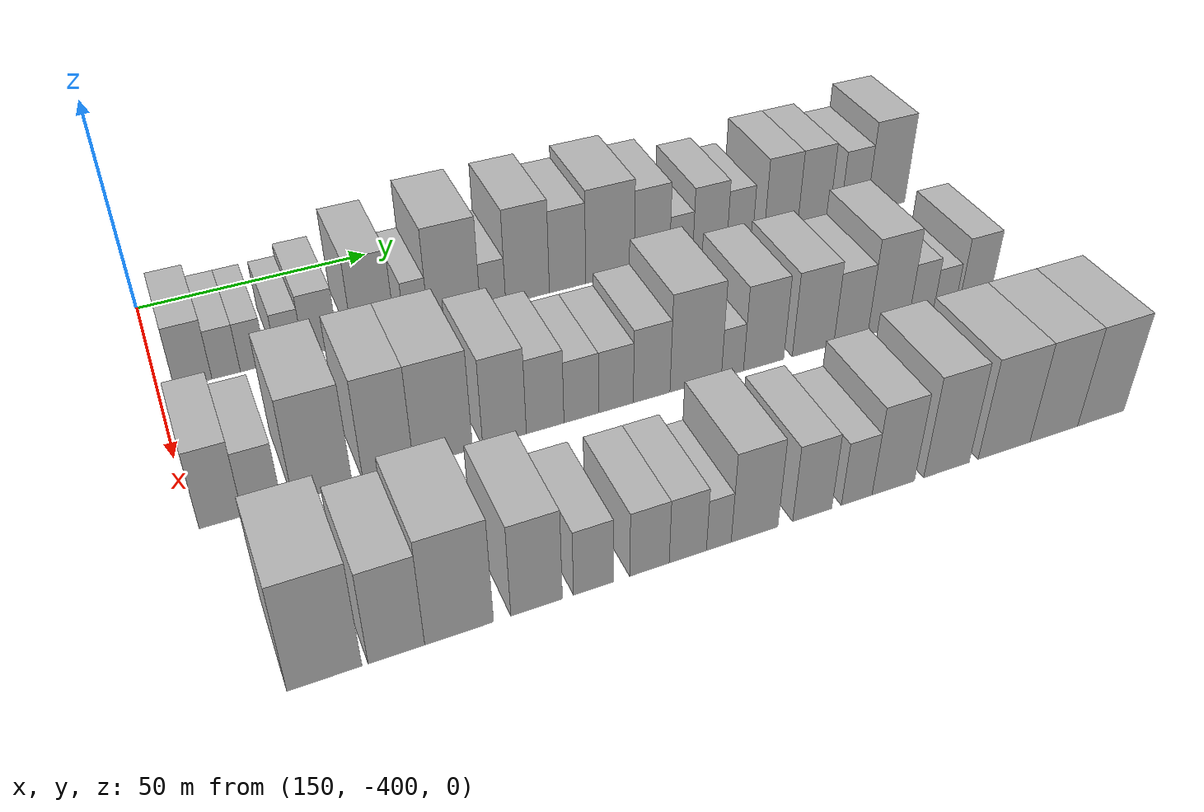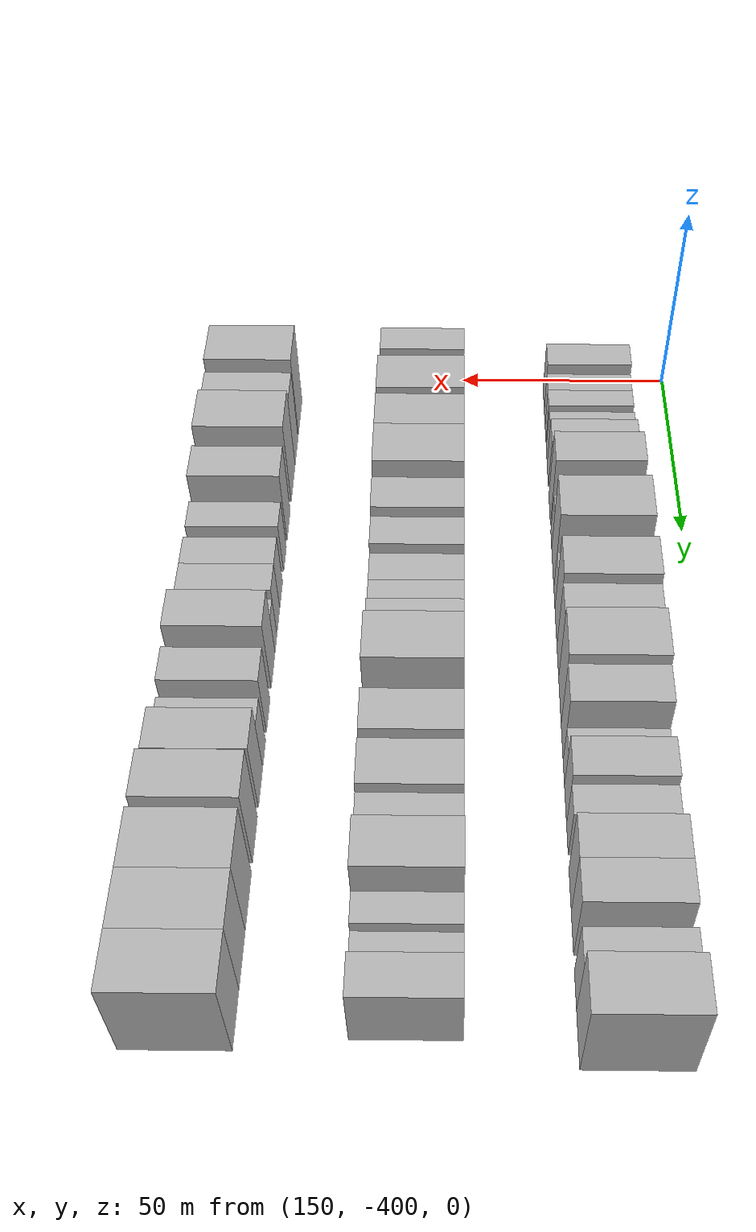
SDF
<sdf version="1.6">
 <world name="default">
  <model name="building_437">
   <static>1</static>
   <pose>170.0000 -393.1007 0 0.000000 0.000000 0.000000</pose>
   <link name="link">
    <pose>0 0 7.50 0 0 0</pose>
    <collision name="collision"><geometry><box><size>20.0000 7.3663 15.0000</size></box></geometry></collision>
    <visual name="visual">
     <cast_shadows>0</cast_shadows>
     <geometry><box><size>20.0000 7.3663 15.0000</size></box></geometry>
     <material>
      <script>
       <uri>model://HANNAS_wall/materials/scripts</uri>
       <uri>model://HANNAS_wall/materials/textures</uri>
       <name>vrc/HANNAS_wall</name>
      </script>
     </material>
    </visual>
   </link>
  </model>
  <model name="building_438">
   <static>1</static>
   <pose>170.0000 -386.5834 0 0.000000 0.000000 0.000000</pose>
   <link name="link">
    <pose>0 0 6.00 0 0 0</pose>
    <collision name="collision"><geometry><box><size>20.0000 5.6684 12.0000</size></box></geometry></collision>
    <visual name="visual">
     <cast_shadows>0</cast_shadows>
     <geometry><box><size>20.0000 5.6684 12.0000</size></box></geometry>
     <material>
      <script>
       <uri>model://HANNAS_wall/materials/scripts</uri>
       <uri>model://HANNAS_wall/materials/textures</uri>
       <name>vrc/HANNAS_wall</name>
      </script>
     </material>
    </visual>
   </link>
  </model>
  <model name="building_439">
   <static>1</static>
   <pose>170.0000 -381.0757 0 0.000000 0.000000 0.000000</pose>
   <link name="link">
    <pose>0 0 6.00 0 0 0</pose>
    <collision name="collision"><geometry><box><size>20.0000 5.3468 12.0000</size></box></geometry></collision>
    <visual name="visual">
     <cast_shadows>0</cast_shadows>
     <geometry><box><size>20.0000 5.3468 12.0000</size></box></geometry>
     <material>
      <script>
       <uri>model://HANNAS_wall/materials/scripts</uri>
       <uri>model://HANNAS_wall/materials/textures</uri>
       <name>vrc/HANNAS_wall</name>
      </script>
     </material>
    </visual>
   </link>
  </model>
  <model name="building_440">
   <static>1</static>
   <pose>170.0000 -373.6140 0 0.000000 0.000000 0.000000</pose>
   <link name="link">
    <pose>0 0 6.00 0 0 0</pose>
    <collision name="collision"><geometry><box><size>20.0000 5.5766 12.0000</size></box></geometry></collision>
    <visual name="visual">
     <cast_shadows>0</cast_shadows>
     <geometry><box><size>20.0000 5.5766 12.0000</size></box></geometry>
     <material>
      <script>
       <uri>model://HANNAS_wall/materials/scripts</uri>
       <uri>model://HANNAS_wall/materials/textures</uri>
       <name>vrc/HANNAS_wall</name>
      </script>
     </material>
    </visual>
   </link>
  </model>
  <model name="building_441">
   <static>1</static>
   <pose>170.0000 -367.2083 0 0.000000 0.000000 0.000000</pose>
   <link name="link">
    <pose>0 0 7.50 0 0 0</pose>
    <collision name="collision"><geometry><box><size>20.0000 7.2350 15.0000</size></box></geometry></collision>
    <visual name="visual">
     <cast_shadows>0</cast_shadows>
     <geometry><box><size>20.0000 7.2350 15.0000</size></box></geometry>
     <material>
      <script>
       <uri>model://HANNAS_wall/materials/scripts</uri>
       <uri>model://HANNAS_wall/materials/textures</uri>
       <name>vrc/HANNAS_wall</name>
      </script>
     </material>
    </visual>
   </link>
  </model>
  <model name="building_442">
   <static>1</static>
   <pose>170.0000 -356.0742 0 0.000000 0.000000 0.000000</pose>
   <link name="link">
    <pose>0 0 10.50 0 0 0</pose>
    <collision name="collision"><geometry><box><size>20.0000 9.0331 21.0000</size></box></geometry></collision>
    <visual name="visual">
     <cast_shadows>0</cast_shadows>
     <geometry><box><size>20.0000 9.0331 21.0000</size></box></geometry>
     <material>
      <script>
       <uri>model://HANNAS_wall/materials/scripts</uri>
       <uri>model://HANNAS_wall/materials/textures</uri>
       <name>vrc/HANNAS_wall</name>
      </script>
     </material>
    </visual>
   </link>
  </model>
  <model name="building_443">
   <static>1</static>
   <pose>170.0000 -346.9433 0 0.000000 0.000000 0.000000</pose>
   <link name="link">
    <pose>0 0 6.00 0 0 0</pose>
    <collision name="collision"><geometry><box><size>20.0000 5.2286 12.0000</size></box></geometry></collision>
    <visual name="visual">
     <cast_shadows>0</cast_shadows>
     <geometry><box><size>20.0000 5.2286 12.0000</size></box></geometry>
     <material>
      <script>
       <uri>model://HANNAS_wall/materials/scripts</uri>
       <uri>model://HANNAS_wall/materials/textures</uri>
       <name>vrc/HANNAS_wall</name>
      </script>
     </material>
    </visual>
   </link>
  </model>
  <model name="building_444">
   <static>1</static>
   <pose>170.0000 -338.5435 0 0.000000 0.000000 0.000000</pose>
   <link name="link">
    <pose>0 0 12.00 0 0 0</pose>
    <collision name="collision"><geometry><box><size>20.0000 11.5711 24.0000</size></box></geometry></collision>
    <visual name="visual">
     <cast_shadows>0</cast_shadows>
     <geometry><box><size>20.0000 11.5711 24.0000</size></box></geometry>
     <material>
      <script>
       <uri>model://HANNAS_wall/materials/scripts</uri>
       <uri>model://HANNAS_wall/materials/textures</uri>
       <name>vrc/HANNAS_wall</name>
      </script>
     </material>
    </visual>
   </link>
  </model>
  <model name="building_445">
   <static>1</static>
   <pose>170.0000 -329.8842 0 0.000000 0.000000 0.000000</pose>
   <link name="link">
    <pose>0 0 6.00 0 0 0</pose>
    <collision name="collision"><geometry><box><size>20.0000 5.7475 12.0000</size></box></geometry></collision>
    <visual name="visual">
     <cast_shadows>0</cast_shadows>
     <geometry><box><size>20.0000 5.7475 12.0000</size></box></geometry>
     <material>
      <script>
       <uri>model://HANNAS_wall/materials/scripts</uri>
       <uri>model://HANNAS_wall/materials/textures</uri>
       <name>vrc/HANNAS_wall</name>
      </script>
     </material>
    </visual>
   </link>
  </model>
  <model name="building_446">
   <static>1</static>
   <pose>170.0000 -321.9696 0 0.000000 0.000000 0.000000</pose>
   <link name="link">
    <pose>0 0 12.00 0 0 0</pose>
    <collision name="collision"><geometry><box><size>20.0000 10.0817 24.0000</size></box></geometry></collision>
    <visual name="visual">
     <cast_shadows>0</cast_shadows>
     <geometry><box><size>20.0000 10.0817 24.0000</size></box></geometry>
     <material>
      <script>
       <uri>model://HANNAS_wall/materials/scripts</uri>
       <uri>model://HANNAS_wall/materials/textures</uri>
       <name>vrc/HANNAS_wall</name>
      </script>
     </material>
    </visual>
   </link>
  </model>
  <model name="building_447">
   <static>1</static>
   <pose>170.0000 -312.6576 0 0.000000 0.000000 0.000000</pose>
   <link name="link">
    <pose>0 0 10.50 0 0 0</pose>
    <collision name="collision"><geometry><box><size>20.0000 8.5422 21.0000</size></box></geometry></collision>
    <visual name="visual">
     <cast_shadows>0</cast_shadows>
     <geometry><box><size>20.0000 8.5422 21.0000</size></box></geometry>
     <material>
      <script>
       <uri>model://HANNAS_wall/materials/scripts</uri>
       <uri>model://HANNAS_wall/materials/textures</uri>
       <name>vrc/HANNAS_wall</name>
      </script>
     </material>
    </visual>
   </link>
  </model>
  <model name="building_448">
   <static>1</static>
   <pose>170.0000 -302.5746 0 0.000000 0.000000 0.000000</pose>
   <link name="link">
    <pose>0 0 12.00 0 0 0</pose>
    <collision name="collision"><geometry><box><size>20.0000 11.6238 24.0000</size></box></geometry></collision>
    <visual name="visual">
     <cast_shadows>0</cast_shadows>
     <geometry><box><size>20.0000 11.6238 24.0000</size></box></geometry>
     <material>
      <script>
       <uri>model://HANNAS_wall/materials/scripts</uri>
       <uri>model://HANNAS_wall/materials/textures</uri>
       <name>vrc/HANNAS_wall</name>
      </script>
     </material>
    </visual>
   </link>
  </model>
  <model name="building_449">
   <static>1</static>
   <pose>170.0000 -292.4098 0 0.000000 0.000000 0.000000</pose>
   <link name="link">
    <pose>0 0 10.50 0 0 0</pose>
    <collision name="collision"><geometry><box><size>20.0000 8.7058 21.0000</size></box></geometry></collision>
    <visual name="visual">
     <cast_shadows>0</cast_shadows>
     <geometry><box><size>20.0000 8.7058 21.0000</size></box></geometry>
     <material>
      <script>
       <uri>model://HANNAS_wall/materials/scripts</uri>
       <uri>model://HANNAS_wall/materials/textures</uri>
       <name>vrc/HANNAS_wall</name>
      </script>
     </material>
    </visual>
   </link>
  </model>
  <model name="building_450">
   <static>1</static>
   <pose>170.0000 -285.1520 0 0.000000 0.000000 0.000000</pose>
   <link name="link">
    <pose>0 0 6.00 0 0 0</pose>
    <collision name="collision"><geometry><box><size>20.0000 5.8097 12.0000</size></box></geometry></collision>
    <visual name="visual">
     <cast_shadows>0</cast_shadows>
     <geometry><box><size>20.0000 5.8097 12.0000</size></box></geometry>
     <material>
      <script>
       <uri>model://HANNAS_wall/materials/scripts</uri>
       <uri>model://HANNAS_wall/materials/textures</uri>
       <name>vrc/HANNAS_wall</name>
      </script>
     </material>
    </visual>
   </link>
  </model>
  <model name="building_451">
   <static>1</static>
   <pose>170.0000 -277.9276 0 0.000000 0.000000 0.000000</pose>
   <link name="link">
    <pose>0 0 9.00 0 0 0</pose>
    <collision name="collision"><geometry><box><size>20.0000 8.6393 18.0000</size></box></geometry></collision>
    <visual name="visual">
     <cast_shadows>0</cast_shadows>
     <geometry><box><size>20.0000 8.6393 18.0000</size></box></geometry>
     <material>
      <script>
       <uri>model://HANNAS_wall/materials/scripts</uri>
       <uri>model://HANNAS_wall/materials/textures</uri>
       <name>vrc/HANNAS_wall</name>
      </script>
     </material>
    </visual>
   </link>
  </model>
  <model name="building_452">
   <static>1</static>
   <pose>170.0000 -270.3039 0 0.000000 0.000000 0.000000</pose>
   <link name="link">
    <pose>0 0 7.50 0 0 0</pose>
    <collision name="collision"><geometry><box><size>20.0000 6.6082 15.0000</size></box></geometry></collision>
    <visual name="visual">
     <cast_shadows>0</cast_shadows>
     <geometry><box><size>20.0000 6.6082 15.0000</size></box></geometry>
     <material>
      <script>
       <uri>model://HANNAS_wall/materials/scripts</uri>
       <uri>model://HANNAS_wall/materials/textures</uri>
       <name>vrc/HANNAS_wall</name>
      </script>
     </material>
    </visual>
   </link>
  </model>
  <model name="building_453">
   <static>1</static>
   <pose>170.0000 -259.5985 0 0.000000 0.000000 0.000000</pose>
   <link name="link">
    <pose>0 0 10.50 0 0 0</pose>
    <collision name="collision"><geometry><box><size>20.0000 8.8025 21.0000</size></box></geometry></collision>
    <visual name="visual">
     <cast_shadows>0</cast_shadows>
     <geometry><box><size>20.0000 8.8025 21.0000</size></box></geometry>
     <material>
      <script>
       <uri>model://HANNAS_wall/materials/scripts</uri>
       <uri>model://HANNAS_wall/materials/textures</uri>
       <name>vrc/HANNAS_wall</name>
      </script>
     </material>
    </visual>
   </link>
  </model>
  <model name="building_454">
   <static>1</static>
   <pose>170.0000 -250.9530 0 0.000000 0.000000 0.000000</pose>
   <link name="link">
    <pose>0 0 10.50 0 0 0</pose>
    <collision name="collision"><geometry><box><size>20.0000 8.4886 21.0000</size></box></geometry></collision>
    <visual name="visual">
     <cast_shadows>0</cast_shadows>
     <geometry><box><size>20.0000 8.4886 21.0000</size></box></geometry>
     <material>
      <script>
       <uri>model://HANNAS_wall/materials/scripts</uri>
       <uri>model://HANNAS_wall/materials/textures</uri>
       <name>vrc/HANNAS_wall</name>
      </script>
     </material>
    </visual>
   </link>
  </model>
  <model name="building_455">
   <static>1</static>
   <pose>170.0000 -240.0830 0 0.000000 0.000000 0.000000</pose>
   <link name="link">
    <pose>0 0 9.00 0 0 0</pose>
    <collision name="collision"><geometry><box><size>20.0000 7.2514 18.0000</size></box></geometry></collision>
    <visual name="visual">
     <cast_shadows>0</cast_shadows>
     <geometry><box><size>20.0000 7.2514 18.0000</size></box></geometry>
     <material>
      <script>
       <uri>model://HANNAS_wall/materials/scripts</uri>
       <uri>model://HANNAS_wall/materials/textures</uri>
       <name>vrc/HANNAS_wall</name>
      </script>
     </material>
    </visual>
   </link>
  </model>
  <model name="building_456">
   <static>1</static>
   <pose>170.0000 -231.1326 0 0.000000 0.000000 0.000000</pose>
   <link name="link">
    <pose>0 0 12.00 0 0 0</pose>
    <collision name="collision"><geometry><box><size>20.0000 10.6492 24.0000</size></box></geometry></collision>
    <visual name="visual">
     <cast_shadows>0</cast_shadows>
     <geometry><box><size>20.0000 10.6492 24.0000</size></box></geometry>
     <material>
      <script>
       <uri>model://HANNAS_wall/materials/scripts</uri>
       <uri>model://HANNAS_wall/materials/textures</uri>
       <name>vrc/HANNAS_wall</name>
      </script>
     </material>
    </visual>
   </link>
  </model>
  <model name="building_567">
   <static>1</static>
   <pose>210.0000 -394.9767 0 0.000000 0.000000 0.000000</pose>
   <link name="link">
    <pose>0 0 9.00 0 0 0</pose>
    <collision name="collision"><geometry><box><size>20.0000 7.6325 18.0000</size></box></geometry></collision>
    <visual name="visual">
     <cast_shadows>0</cast_shadows>
     <geometry><box><size>20.0000 7.6325 18.0000</size></box></geometry>
     <material>
      <script>
       <uri>model://HANNAS_wall/materials/scripts</uri>
       <uri>model://HANNAS_wall/materials/textures</uri>
       <name>vrc/HANNAS_wall</name>
      </script>
     </material>
    </visual>
   </link>
  </model>
  <model name="building_568">
   <static>1</static>
   <pose>210.0000 -387.6490 0 0.000000 0.000000 0.000000</pose>
   <link name="link">
    <pose>0 0 7.50 0 0 0</pose>
    <collision name="collision"><geometry><box><size>20.0000 7.0229 15.0000</size></box></geometry></collision>
    <visual name="visual">
     <cast_shadows>0</cast_shadows>
     <geometry><box><size>20.0000 7.0229 15.0000</size></box></geometry>
     <material>
      <script>
       <uri>model://HANNAS_wall/materials/scripts</uri>
       <uri>model://HANNAS_wall/materials/textures</uri>
       <name>vrc/HANNAS_wall</name>
      </script>
     </material>
    </visual>
   </link>
  </model>
  <model name="building_569">
   <static>1</static>
   <pose>210.0000 -376.6925 0 0.000000 0.000000 0.000000</pose>
   <link name="link">
    <pose>0 0 12.00 0 0 0</pose>
    <collision name="collision"><geometry><box><size>20.0000 10.8902 24.0000</size></box></geometry></collision>
    <visual name="visual">
     <cast_shadows>0</cast_shadows>
     <geometry><box><size>20.0000 10.8902 24.0000</size></box></geometry>
     <material>
      <script>
       <uri>model://HANNAS_wall/materials/scripts</uri>
       <uri>model://HANNAS_wall/materials/textures</uri>
       <name>vrc/HANNAS_wall</name>
      </script>
     </material>
    </visual>
   </link>
  </model>
  <model name="building_570">
   <static>1</static>
   <pose>210.0000 -364.4446 0 0.000000 0.000000 0.000000</pose>
   <link name="link">
    <pose>0 0 12.00 0 0 0</pose>
    <collision name="collision"><geometry><box><size>20.0000 9.6057 24.0000</size></box></geometry></collision>
    <visual name="visual">
     <cast_shadows>0</cast_shadows>
     <geometry><box><size>20.0000 9.6057 24.0000</size></box></geometry>
     <material>
      <script>
       <uri>model://HANNAS_wall/materials/scripts</uri>
       <uri>model://HANNAS_wall/materials/textures</uri>
       <name>vrc/HANNAS_wall</name>
      </script>
     </material>
    </visual>
   </link>
  </model>
  <model name="building_571">
   <static>1</static>
   <pose>210.0000 -353.8946 0 0.000000 0.000000 0.000000</pose>
   <link name="link">
    <pose>0 0 12.00 0 0 0</pose>
    <collision name="collision"><geometry><box><size>20.0000 11.4943 24.0000</size></box></geometry></collision>
    <visual name="visual">
     <cast_shadows>0</cast_shadows>
     <geometry><box><size>20.0000 11.4943 24.0000</size></box></geometry>
     <material>
      <script>
       <uri>model://HANNAS_wall/materials/scripts</uri>
       <uri>model://HANNAS_wall/materials/textures</uri>
       <name>vrc/HANNAS_wall</name>
      </script>
     </material>
    </visual>
   </link>
  </model>
  <model name="building_572">
   <static>1</static>
   <pose>210.0000 -341.7567 0 0.000000 0.000000 0.000000</pose>
   <link name="link">
    <pose>0 0 10.50 0 0 0</pose>
    <collision name="collision"><geometry><box><size>20.0000 8.7815 21.0000</size></box></geometry></collision>
    <visual name="visual">
     <cast_shadows>0</cast_shadows>
     <geometry><box><size>20.0000 8.7815 21.0000</size></box></geometry>
     <material>
      <script>
       <uri>model://HANNAS_wall/materials/scripts</uri>
       <uri>model://HANNAS_wall/materials/textures</uri>
       <name>vrc/HANNAS_wall</name>
      </script>
     </material>
    </visual>
   </link>
  </model>
  <model name="building_573">
   <static>1</static>
   <pose>210.0000 -333.5121 0 0.000000 0.000000 0.000000</pose>
   <link name="link">
    <pose>0 0 9.00 0 0 0</pose>
    <collision name="collision"><geometry><box><size>20.0000 7.7076 18.0000</size></box></geometry></collision>
    <visual name="visual">
     <cast_shadows>0</cast_shadows>
     <geometry><box><size>20.0000 7.7076 18.0000</size></box></geometry>
     <material>
      <script>
       <uri>model://HANNAS_wall/materials/scripts</uri>
       <uri>model://HANNAS_wall/materials/textures</uri>
       <name>vrc/HANNAS_wall</name>
      </script>
     </material>
    </visual>
   </link>
  </model>
  <model name="building_574">
   <static>1</static>
   <pose>210.0000 -326.0404 0 0.000000 0.000000 0.000000</pose>
   <link name="link">
    <pose>0 0 7.50 0 0 0</pose>
    <collision name="collision"><geometry><box><size>20.0000 7.2357 15.0000</size></box></geometry></collision>
    <visual name="visual">
     <cast_shadows>0</cast_shadows>
     <geometry><box><size>20.0000 7.2357 15.0000</size></box></geometry>
     <material>
      <script>
       <uri>model://HANNAS_wall/materials/scripts</uri>
       <uri>model://HANNAS_wall/materials/textures</uri>
       <name>vrc/HANNAS_wall</name>
      </script>
     </material>
    </visual>
   </link>
  </model>
  <model name="building_575">
   <static>1</static>
   <pose>210.0000 -318.7363 0 0.000000 0.000000 0.000000</pose>
   <link name="link">
    <pose>0 0 7.50 0 0 0</pose>
    <collision name="collision"><geometry><box><size>20.0000 7.3725 15.0000</size></box></geometry></collision>
    <visual name="visual">
     <cast_shadows>0</cast_shadows>
     <geometry><box><size>20.0000 7.3725 15.0000</size></box></geometry>
     <material>
      <script>
       <uri>model://HANNAS_wall/materials/scripts</uri>
       <uri>model://HANNAS_wall/materials/textures</uri>
       <name>vrc/HANNAS_wall</name>
      </script>
     </material>
    </visual>
   </link>
  </model>
  <model name="building_576">
   <static>1</static>
   <pose>210.0000 -311.0718 0 0.000000 0.000000 0.000000</pose>
   <link name="link">
    <pose>0 0 9.00 0 0 0</pose>
    <collision name="collision"><geometry><box><size>20.0000 7.9565 18.0000</size></box></geometry></collision>
    <visual name="visual">
     <cast_shadows>0</cast_shadows>
     <geometry><box><size>20.0000 7.9565 18.0000</size></box></geometry>
     <material>
      <script>
       <uri>model://HANNAS_wall/materials/scripts</uri>
       <uri>model://HANNAS_wall/materials/textures</uri>
       <name>vrc/HANNAS_wall</name>
      </script>
     </material>
    </visual>
   </link>
  </model>
  <model name="building_577">
   <static>1</static>
   <pose>210.0000 -301.3837 0 0.000000 0.000000 0.000000</pose>
   <link name="link">
    <pose>0 0 12.00 0 0 0</pose>
    <collision name="collision"><geometry><box><size>20.0000 11.4197 24.0000</size></box></geometry></collision>
    <visual name="visual">
     <cast_shadows>0</cast_shadows>
     <geometry><box><size>20.0000 11.4197 24.0000</size></box></geometry>
     <material>
      <script>
       <uri>model://HANNAS_wall/materials/scripts</uri>
       <uri>model://HANNAS_wall/materials/textures</uri>
       <name>vrc/HANNAS_wall</name>
      </script>
     </material>
    </visual>
   </link>
  </model>
  <model name="building_578">
   <static>1</static>
   <pose>210.0000 -293.1694 0 0.000000 0.000000 0.000000</pose>
   <link name="link">
    <pose>0 0 6.00 0 0 0</pose>
    <collision name="collision"><geometry><box><size>20.0000 5.0089 12.0000</size></box></geometry></collision>
    <visual name="visual">
     <cast_shadows>0</cast_shadows>
     <geometry><box><size>20.0000 5.0089 12.0000</size></box></geometry>
     <material>
      <script>
       <uri>model://HANNAS_wall/materials/scripts</uri>
       <uri>model://HANNAS_wall/materials/textures</uri>
       <name>vrc/HANNAS_wall</name>
      </script>
     </material>
    </visual>
   </link>
  </model>
  <model name="building_579">
   <static>1</static>
   <pose>210.0000 -286.0375 0 0.000000 0.000000 0.000000</pose>
   <link name="link">
    <pose>0 0 10.50 0 0 0</pose>
    <collision name="collision"><geometry><box><size>20.0000 9.2550 21.0000</size></box></geometry></collision>
    <visual name="visual">
     <cast_shadows>0</cast_shadows>
     <geometry><box><size>20.0000 9.2550 21.0000</size></box></geometry>
     <material>
      <script>
       <uri>model://HANNAS_wall/materials/scripts</uri>
       <uri>model://HANNAS_wall/materials/textures</uri>
       <name>vrc/HANNAS_wall</name>
      </script>
     </material>
    </visual>
   </link>
  </model>
  <model name="building_580">
   <static>1</static>
   <pose>210.0000 -274.5081 0 0.000000 0.000000 0.000000</pose>
   <link name="link">
    <pose>0 0 10.50 0 0 0</pose>
    <collision name="collision"><geometry><box><size>20.0000 9.8038 21.0000</size></box></geometry></collision>
    <visual name="visual">
     <cast_shadows>0</cast_shadows>
     <geometry><box><size>20.0000 9.8038 21.0000</size></box></geometry>
     <material>
      <script>
       <uri>model://HANNAS_wall/materials/scripts</uri>
       <uri>model://HANNAS_wall/materials/textures</uri>
       <name>vrc/HANNAS_wall</name>
      </script>
     </material>
    </visual>
   </link>
  </model>
  <model name="building_581">
   <static>1</static>
   <pose>210.0000 -265.4993 0 0.000000 0.000000 0.000000</pose>
   <link name="link">
    <pose>0 0 9.00 0 0 0</pose>
    <collision name="collision"><geometry><box><size>20.0000 8.2138 18.0000</size></box></geometry></collision>
    <visual name="visual">
     <cast_shadows>0</cast_shadows>
     <geometry><box><size>20.0000 8.2138 18.0000</size></box></geometry>
     <material>
      <script>
       <uri>model://HANNAS_wall/materials/scripts</uri>
       <uri>model://HANNAS_wall/materials/textures</uri>
       <name>vrc/HANNAS_wall</name>
      </script>
     </material>
    </visual>
   </link>
  </model>
  <model name="building_582">
   <static>1</static>
   <pose>210.0000 -256.4042 0 0.000000 0.000000 0.000000</pose>
   <link name="link">
    <pose>0 0 12.00 0 0 0</pose>
    <collision name="collision"><geometry><box><size>20.0000 9.9763 24.0000</size></box></geometry></collision>
    <visual name="visual">
     <cast_shadows>0</cast_shadows>
     <geometry><box><size>20.0000 9.9763 24.0000</size></box></geometry>
     <material>
      <script>
       <uri>model://HANNAS_wall/materials/scripts</uri>
       <uri>model://HANNAS_wall/materials/textures</uri>
       <name>vrc/HANNAS_wall</name>
      </script>
     </material>
    </visual>
   </link>
  </model>
  <model name="building_583">
   <static>1</static>
   <pose>210.0000 -248.3607 0 0.000000 0.000000 0.000000</pose>
   <link name="link">
    <pose>0 0 7.50 0 0 0</pose>
    <collision name="collision"><geometry><box><size>20.0000 6.1108 15.0000</size></box></geometry></collision>
    <visual name="visual">
     <cast_shadows>0</cast_shadows>
     <geometry><box><size>20.0000 6.1108 15.0000</size></box></geometry>
     <material>
      <script>
       <uri>model://HANNAS_wall/materials/scripts</uri>
       <uri>model://HANNAS_wall/materials/textures</uri>
       <name>vrc/HANNAS_wall</name>
      </script>
     </material>
    </visual>
   </link>
  </model>
  <model name="building_584">
   <static>1</static>
   <pose>210.0000 -242.5183 0 0.000000 0.000000 0.000000</pose>
   <link name="link">
    <pose>0 0 6.00 0 0 0</pose>
    <collision name="collision"><geometry><box><size>20.0000 5.5739 12.0000</size></box></geometry></collision>
    <visual name="visual">
     <cast_shadows>0</cast_shadows>
     <geometry><box><size>20.0000 5.5739 12.0000</size></box></geometry>
     <material>
      <script>
       <uri>model://HANNAS_wall/materials/scripts</uri>
       <uri>model://HANNAS_wall/materials/textures</uri>
       <name>vrc/HANNAS_wall</name>
      </script>
     </material>
    </visual>
   </link>
  </model>
  <model name="building_585">
   <static>1</static>
   <pose>210.0000 -234.7299 0 0.000000 0.000000 0.000000</pose>
   <link name="link">
    <pose>0 0 9.00 0 0 0</pose>
    <collision name="collision"><geometry><box><size>20.0000 8.0029 18.0000</size></box></geometry></collision>
    <visual name="visual">
     <cast_shadows>0</cast_shadows>
     <geometry><box><size>20.0000 8.0029 18.0000</size></box></geometry>
     <material>
      <script>
       <uri>model://HANNAS_wall/materials/scripts</uri>
       <uri>model://HANNAS_wall/materials/textures</uri>
       <name>vrc/HANNAS_wall</name>
      </script>
     </material>
    </visual>
   </link>
  </model>
  <model name="building_710">
   <static>1</static>
   <pose>250.0000 -386.2293 0 0.000000 0.000000 0.000000</pose>
   <link name="link">
    <pose>0 0 12.00 0 0 0</pose>
    <collision name="collision"><geometry><box><size>20.0000 11.9785 24.0000</size></box></geometry></collision>
    <visual name="visual">
     <cast_shadows>0</cast_shadows>
     <geometry><box><size>20.0000 11.9785 24.0000</size></box></geometry>
     <material>
      <script>
       <uri>model://HANNAS_wall/materials/scripts</uri>
       <uri>model://HANNAS_wall/materials/textures</uri>
       <name>vrc/HANNAS_wall</name>
      </script>
     </material>
    </visual>
   </link>
  </model>
  <model name="building_711">
   <static>1</static>
   <pose>250.0000 -374.5732 0 0.000000 0.000000 0.000000</pose>
   <link name="link">
    <pose>0 0 10.50 0 0 0</pose>
    <collision name="collision"><geometry><box><size>20.0000 9.3337 21.0000</size></box></geometry></collision>
    <visual name="visual">
     <cast_shadows>0</cast_shadows>
     <geometry><box><size>20.0000 9.3337 21.0000</size></box></geometry>
     <material>
      <script>
       <uri>model://HANNAS_wall/materials/scripts</uri>
       <uri>model://HANNAS_wall/materials/textures</uri>
       <name>vrc/HANNAS_wall</name>
      </script>
     </material>
    </visual>
   </link>
  </model>
  <model name="building_712">
   <static>1</static>
   <pose>250.0000 -364.0508 0 0.000000 0.000000 0.000000</pose>
   <link name="link">
    <pose>0 0 12.00 0 0 0</pose>
    <collision name="collision"><geometry><box><size>20.0000 11.7110 24.0000</size></box></geometry></collision>
    <visual name="visual">
     <cast_shadows>0</cast_shadows>
     <geometry><box><size>20.0000 11.7110 24.0000</size></box></geometry>
     <material>
      <script>
       <uri>model://HANNAS_wall/materials/scripts</uri>
       <uri>model://HANNAS_wall/materials/textures</uri>
       <name>vrc/HANNAS_wall</name>
      </script>
     </material>
    </visual>
   </link>
  </model>
  <model name="building_713">
   <static>1</static>
   <pose>250.0000 -350.6379 0 0.000000 0.000000 0.000000</pose>
   <link name="link">
    <pose>0 0 10.50 0 0 0</pose>
    <collision name="collision"><geometry><box><size>20.0000 9.1149 21.0000</size></box></geometry></collision>
    <visual name="visual">
     <cast_shadows>0</cast_shadows>
     <geometry><box><size>20.0000 9.1149 21.0000</size></box></geometry>
     <material>
      <script>
       <uri>model://HANNAS_wall/materials/scripts</uri>
       <uri>model://HANNAS_wall/materials/textures</uri>
       <name>vrc/HANNAS_wall</name>
      </script>
     </material>
    </visual>
   </link>
  </model>
  <model name="building_714">
   <static>1</static>
   <pose>250.0000 -340.4480 0 0.000000 0.000000 0.000000</pose>
   <link name="link">
    <pose>0 0 7.50 0 0 0</pose>
    <collision name="collision"><geometry><box><size>20.0000 7.2649 15.0000</size></box></geometry></collision>
    <visual name="visual">
     <cast_shadows>0</cast_shadows>
     <geometry><box><size>20.0000 7.2649 15.0000</size></box></geometry>
     <material>
      <script>
       <uri>model://HANNAS_wall/materials/scripts</uri>
       <uri>model://HANNAS_wall/materials/textures</uri>
       <name>vrc/HANNAS_wall</name>
      </script>
     </material>
    </visual>
   </link>
  </model>
  <model name="building_715">
   <static>1</static>
   <pose>250.0000 -330.1103 0 0.000000 0.000000 0.000000</pose>
   <link name="link">
    <pose>0 0 7.50 0 0 0</pose>
    <collision name="collision"><geometry><box><size>20.0000 7.4105 15.0000</size></box></geometry></collision>
    <visual name="visual">
     <cast_shadows>0</cast_shadows>
     <geometry><box><size>20.0000 7.4105 15.0000</size></box></geometry>
     <material>
      <script>
       <uri>model://HANNAS_wall/materials/scripts</uri>
       <uri>model://HANNAS_wall/materials/textures</uri>
       <name>vrc/HANNAS_wall</name>
      </script>
     </material>
    </visual>
   </link>
  </model>
  <model name="building_716">
   <static>1</static>
   <pose>250.0000 -322.8423 0 0.000000 0.000000 0.000000</pose>
   <link name="link">
    <pose>0 0 7.50 0 0 0</pose>
    <collision name="collision"><geometry><box><size>20.0000 7.1255 15.0000</size></box></geometry></collision>
    <visual name="visual">
     <cast_shadows>0</cast_shadows>
     <geometry><box><size>20.0000 7.1255 15.0000</size></box></geometry>
     <material>
      <script>
       <uri>model://HANNAS_wall/materials/scripts</uri>
       <uri>model://HANNAS_wall/materials/textures</uri>
       <name>vrc/HANNAS_wall</name>
      </script>
     </material>
    </visual>
   </link>
  </model>
  <model name="building_717">
   <static>1</static>
   <pose>250.0000 -316.8735 0 0.000000 0.000000 0.000000</pose>
   <link name="link">
    <pose>0 0 6.00 0 0 0</pose>
    <collision name="collision"><geometry><box><size>20.0000 4.8122 12.0000</size></box></geometry></collision>
    <visual name="visual">
     <cast_shadows>0</cast_shadows>
     <geometry><box><size>20.0000 4.8122 12.0000</size></box></geometry>
     <material>
      <script>
       <uri>model://HANNAS_wall/materials/scripts</uri>
       <uri>model://HANNAS_wall/materials/textures</uri>
       <name>vrc/HANNAS_wall</name>
      </script>
     </material>
    </visual>
   </link>
  </model>
  <model name="building_718">
   <static>1</static>
   <pose>250.0000 -309.8396 0 0.000000 0.000000 0.000000</pose>
   <link name="link">
    <pose>0 0 10.50 0 0 0</pose>
    <collision name="collision"><geometry><box><size>20.0000 9.2556 21.0000</size></box></geometry></collision>
    <visual name="visual">
     <cast_shadows>0</cast_shadows>
     <geometry><box><size>20.0000 9.2556 21.0000</size></box></geometry>
     <material>
      <script>
       <uri>model://HANNAS_wall/materials/scripts</uri>
       <uri>model://HANNAS_wall/materials/textures</uri>
       <name>vrc/HANNAS_wall</name>
      </script>
     </material>
    </visual>
   </link>
  </model>
  <model name="building_719">
   <static>1</static>
   <pose>250.0000 -298.2152 0 0.000000 0.000000 0.000000</pose>
   <link name="link">
    <pose>0 0 9.00 0 0 0</pose>
    <collision name="collision"><geometry><box><size>20.0000 7.9932 18.0000</size></box></geometry></collision>
    <visual name="visual">
     <cast_shadows>0</cast_shadows>
     <geometry><box><size>20.0000 7.9932 18.0000</size></box></geometry>
     <material>
      <script>
       <uri>model://HANNAS_wall/materials/scripts</uri>
       <uri>model://HANNAS_wall/materials/textures</uri>
       <name>vrc/HANNAS_wall</name>
      </script>
     </material>
    </visual>
   </link>
  </model>
  <model name="building_720">
   <static>1</static>
   <pose>250.0000 -289.0047 0 0.000000 0.000000 0.000000</pose>
   <link name="link">
    <pose>0 0 7.50 0 0 0</pose>
    <collision name="collision"><geometry><box><size>20.0000 6.4277 15.0000</size></box></geometry></collision>
    <visual name="visual">
     <cast_shadows>0</cast_shadows>
     <geometry><box><size>20.0000 6.4277 15.0000</size></box></geometry>
     <material>
      <script>
       <uri>model://HANNAS_wall/materials/scripts</uri>
       <uri>model://HANNAS_wall/materials/textures</uri>
       <name>vrc/HANNAS_wall</name>
      </script>
     </material>
    </visual>
   </link>
  </model>
  <model name="building_721">
   <static>1</static>
   <pose>250.0000 -281.2384 0 0.000000 0.000000 0.000000</pose>
   <link name="link">
    <pose>0 0 10.50 0 0 0</pose>
    <collision name="collision"><geometry><box><size>20.0000 9.1048 21.0000</size></box></geometry></collision>
    <visual name="visual">
     <cast_shadows>0</cast_shadows>
     <geometry><box><size>20.0000 9.1048 21.0000</size></box></geometry>
     <material>
      <script>
       <uri>model://HANNAS_wall/materials/scripts</uri>
       <uri>model://HANNAS_wall/materials/textures</uri>
       <name>vrc/HANNAS_wall</name>
      </script>
     </material>
    </visual>
   </link>
  </model>
  <model name="building_722">
   <static>1</static>
   <pose>250.0000 -269.6713 0 0.000000 0.000000 0.000000</pose>
   <link name="link">
    <pose>0 0 12.00 0 0 0</pose>
    <collision name="collision"><geometry><box><size>20.0000 10.0293 24.0000</size></box></geometry></collision>
    <visual name="visual">
     <cast_shadows>0</cast_shadows>
     <geometry><box><size>20.0000 10.0293 24.0000</size></box></geometry>
     <material>
      <script>
       <uri>model://HANNAS_wall/materials/scripts</uri>
       <uri>model://HANNAS_wall/materials/textures</uri>
       <name>vrc/HANNAS_wall</name>
      </script>
     </material>
    </visual>
   </link>
  </model>
  <model name="building_723">
   <static>1</static>
   <pose>250.0000 -256.7534 0 0.000000 0.000000 0.000000</pose>
   <link name="link">
    <pose>0 0 12.00 0 0 0</pose>
    <collision name="collision"><geometry><box><size>20.0000 11.8066 24.0000</size></box></geometry></collision>
    <visual name="visual">
     <cast_shadows>0</cast_shadows>
     <geometry><box><size>20.0000 11.8066 24.0000</size></box></geometry>
     <material>
      <script>
       <uri>model://HANNAS_wall/materials/scripts</uri>
       <uri>model://HANNAS_wall/materials/textures</uri>
       <name>vrc/HANNAS_wall</name>
      </script>
     </material>
    </visual>
   </link>
  </model>
  <model name="building_724">
   <static>1</static>
   <pose>250.0000 -245.2381 0 0.000000 0.000000 0.000000</pose>
   <link name="link">
    <pose>0 0 12.00 0 0 0</pose>
    <collision name="collision"><geometry><box><size>20.0000 11.2240 24.0000</size></box></geometry></collision>
    <visual name="visual">
     <cast_shadows>0</cast_shadows>
     <geometry><box><size>20.0000 11.2240 24.0000</size></box></geometry>
     <material>
      <script>
       <uri>model://HANNAS_wall/materials/scripts</uri>
       <uri>model://HANNAS_wall/materials/textures</uri>
       <name>vrc/HANNAS_wall</name>
      </script>
     </material>
    </visual>
   </link>
  </model>
  <model name="building_725">
   <static>1</static>
   <pose>250.0000 -234.0712 0 0.000000 0.000000 0.000000</pose>
   <link name="link">
    <pose>0 0 12.00 0 0 0</pose>
    <collision name="collision"><geometry><box><size>20.0000 11.1099 24.0000</size></box></geometry></collision>
    <visual name="visual">
     <cast_shadows>0</cast_shadows>
     <geometry><box><size>20.0000 11.1099 24.0000</size></box></geometry>
     <material>
      <script>
       <uri>model://HANNAS_wall/materials/scripts</uri>
       <uri>model://HANNAS_wall/materials/textures</uri>
       <name>vrc/HANNAS_wall</name>
      </script>
     </material>
    </visual>
   </link>
  </model>
 </world>
</sdf>
